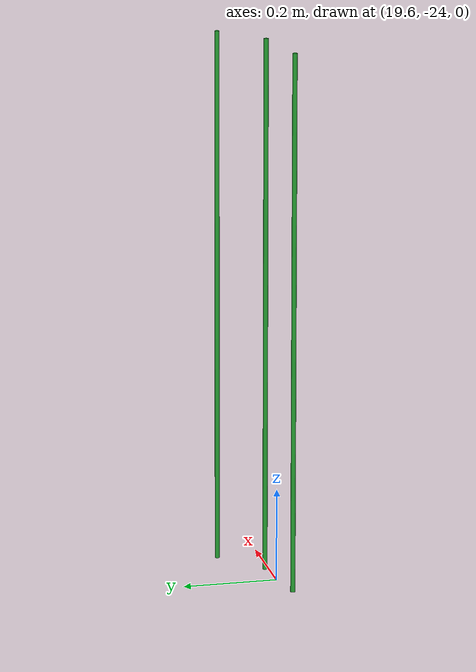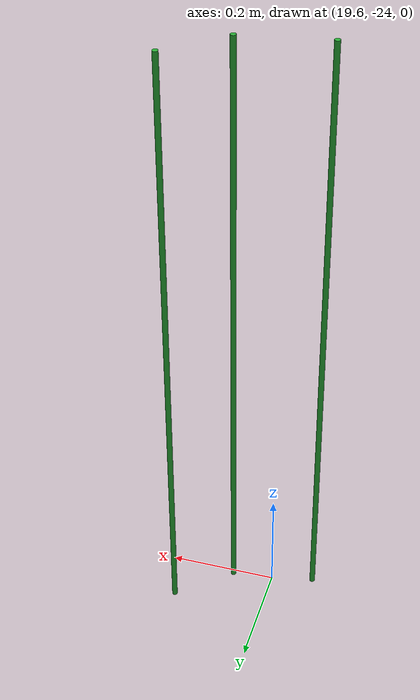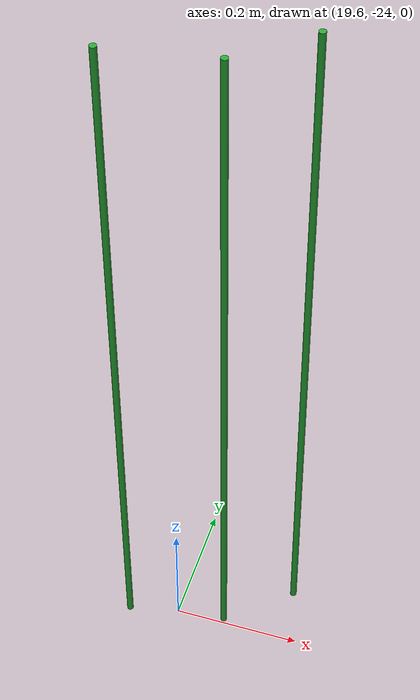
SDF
<sdf version="1.6">
 <world name="default">
  <model name="pole_27_clone_clone_40">
   <link name="link">
    <inertial>
     <mass>1</mass>
     <inertia><ixx>1</ixx><ixy>0</ixy><ixz>0</ixz><iyy>1</iyy><iyz>0</iyz><izz>1</izz></inertia>
    </inertial>
    <visual name="visual">
     <geometry><cylinder><length>1.15</length><radius>0.005</radius></cylinder></geometry>
     <material>
      <script><uri>file://media/materials/scripts/gazebo.material</uri><name>Gazebo/Green</name></script>
      <shader type="vertex"><normal_map>__default__</normal_map></shader>
      <emissive>0 0.1 0 1</emissive>
      <specular>0 0.01 0 1</specular>
      <ambient>0 0.5 0 1</ambient>
      <diffuse>0 0.05 0 1</diffuse>
     </material>
    </visual>
    <collision name="collision">
     <geometry><cylinder><radius>0.005</radius><length>1.15</length></cylinder></geometry>
     <surface>
      <friction>
       <ode><mu>1</mu><mu2>1</mu2><fdir1>0 0 0</fdir1><slip1>0</slip1><slip2>0</slip2></ode>
       <torsional>
        <coefficient>1</coefficient>
        <patch_radius>0</patch_radius>
        <surface_radius>0</surface_radius>
        <use_patch_radius>1</use_patch_radius>
        <ode><slip>0</slip></ode>
       </torsional>
      </friction>
      <bounce><restitution_coefficient>0</restitution_coefficient><threshold>1e+06</threshold></bounce>
      <contact>
       <collide_without_contact>0</collide_without_contact>
       <collide_without_contact_bitmask>1</collide_without_contact_bitmask>
       <collide_bitmask>1</collide_bitmask>
       <ode>
        <soft_cfm>0</soft_cfm>
        <soft_erp>0.2</soft_erp>
        <kp>1e+13</kp>
        <kd>1</kd>
        <max_vel>0.01</max_vel>
        <min_depth>0</min_depth>
       </ode>
       <bullet>
        <split_impulse>1</split_impulse>
        <split_impulse_penetration_threshold>-0.01</split_impulse_penetration_threshold>
        <soft_cfm>0</soft_cfm>
        <soft_erp>0.2</soft_erp>
        <kp>1e+13</kp>
        <kd>1</kd>
       </bullet>
      </contact>
     </surface>
    </collision>
   </link>
   <static>1</static>
   <pose>19.7712 -23.9093 0.575 0 -0 0</pose>
  </model>
  <model name="pole_27_clone_clone_43">
   <link name="link">
    <inertial>
     <mass>1</mass>
     <inertia><ixx>1</ixx><ixy>0</ixy><ixz>0</ixz><iyy>1</iyy><iyz>0</iyz><izz>1</izz></inertia>
    </inertial>
    <visual name="visual">
     <geometry><cylinder><length>1.15</length><radius>0.005</radius></cylinder></geometry>
     <material>
      <script><uri>file://media/materials/scripts/gazebo.material</uri><name>Gazebo/Green</name></script>
      <shader type="vertex"><normal_map>__default__</normal_map></shader>
      <emissive>0 0.1 0 1</emissive>
      <specular>0 0.01 0 1</specular>
      <ambient>0 0.5 0 1</ambient>
      <diffuse>0 0.05 0 1</diffuse>
     </material>
    </visual>
    <collision name="collision">
     <geometry><cylinder><radius>0.005</radius><length>1.15</length></cylinder></geometry>
     <surface>
      <friction>
       <ode><mu>1</mu><mu2>1</mu2><fdir1>0 0 0</fdir1><slip1>0</slip1><slip2>0</slip2></ode>
       <torsional>
        <coefficient>1</coefficient>
        <patch_radius>0</patch_radius>
        <surface_radius>0</surface_radius>
        <use_patch_radius>1</use_patch_radius>
        <ode><slip>0</slip></ode>
       </torsional>
      </friction>
      <bounce><restitution_coefficient>0</restitution_coefficient><threshold>1e+06</threshold></bounce>
      <contact>
       <collide_without_contact>0</collide_without_contact>
       <collide_without_contact_bitmask>1</collide_without_contact_bitmask>
       <collide_bitmask>1</collide_bitmask>
       <ode>
        <soft_cfm>0</soft_cfm>
        <soft_erp>0.2</soft_erp>
        <kp>1e+13</kp>
        <kd>1</kd>
        <max_vel>0.01</max_vel>
        <min_depth>0</min_depth>
       </ode>
       <bullet>
        <split_impulse>1</split_impulse>
        <split_impulse_penetration_threshold>-0.01</split_impulse_penetration_threshold>
        <soft_cfm>0</soft_cfm>
        <soft_erp>0.2</soft_erp>
        <kp>1e+13</kp>
        <kd>1</kd>
       </bullet>
      </contact>
     </surface>
    </collision>
   </link>
   <static>1</static>
   <pose>19.5219 -24.0167 0.575 0 -0 0</pose>
  </model>
  <model name="pole_27_clone_clone_44">
   <link name="link">
    <inertial>
     <mass>1</mass>
     <inertia><ixx>1</ixx><ixy>0</ixy><ixz>0</ixz><iyy>1</iyy><iyz>0</iyz><izz>1</izz></inertia>
    </inertial>
    <visual name="visual">
     <geometry><cylinder><length>1.15</length><radius>0.005</radius></cylinder></geometry>
     <material>
      <script><uri>file://media/materials/scripts/gazebo.material</uri><name>Gazebo/Green</name></script>
      <shader type="vertex"><normal_map>__default__</normal_map></shader>
      <emissive>0 0.1 0 1</emissive>
      <specular>0 0.01 0 1</specular>
      <ambient>0 0.5 0 1</ambient>
      <diffuse>0 0.05 0 1</diffuse>
     </material>
    </visual>
    <collision name="collision">
     <geometry><cylinder><radius>0.005</radius><length>1.15</length></cylinder></geometry>
     <surface>
      <friction>
       <ode><mu>1</mu><mu2>1</mu2><fdir1>0 0 0</fdir1><slip1>0</slip1><slip2>0</slip2></ode>
       <torsional>
        <coefficient>1</coefficient>
        <patch_radius>0</patch_radius>
        <surface_radius>0</surface_radius>
        <use_patch_radius>1</use_patch_radius>
        <ode><slip>0</slip></ode>
       </torsional>
      </friction>
      <bounce><restitution_coefficient>0</restitution_coefficient><threshold>1e+06</threshold></bounce>
      <contact>
       <collide_without_contact>0</collide_without_contact>
       <collide_without_contact_bitmask>1</collide_without_contact_bitmask>
       <collide_bitmask>1</collide_bitmask>
       <ode>
        <soft_cfm>0</soft_cfm>
        <soft_erp>0.2</soft_erp>
        <kp>1e+13</kp>
        <kd>1</kd>
        <max_vel>0.01</max_vel>
        <min_depth>0</min_depth>
       </ode>
       <bullet>
        <split_impulse>1</split_impulse>
        <split_impulse_penetration_threshold>-0.01</split_impulse_penetration_threshold>
        <soft_cfm>0</soft_cfm>
        <soft_erp>0.2</soft_erp>
        <kp>1e+13</kp>
        <kd>1</kd>
       </bullet>
      </contact>
     </surface>
    </collision>
   </link>
   <static>1</static>
   <pose>19.6759 -23.9922 0.575 0 -0 0</pose>
  </model>
 </world>
</sdf>
